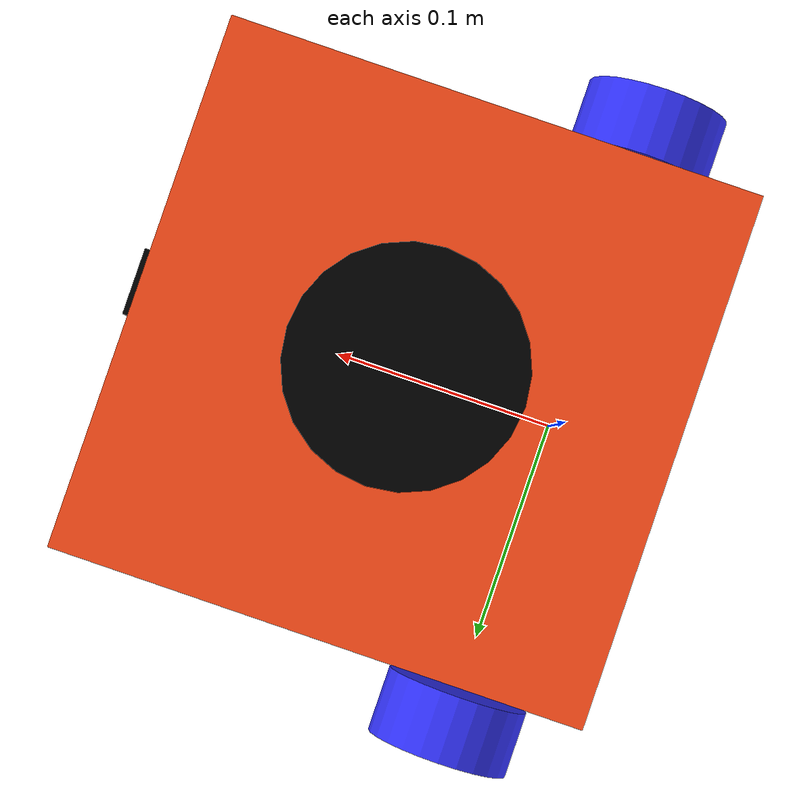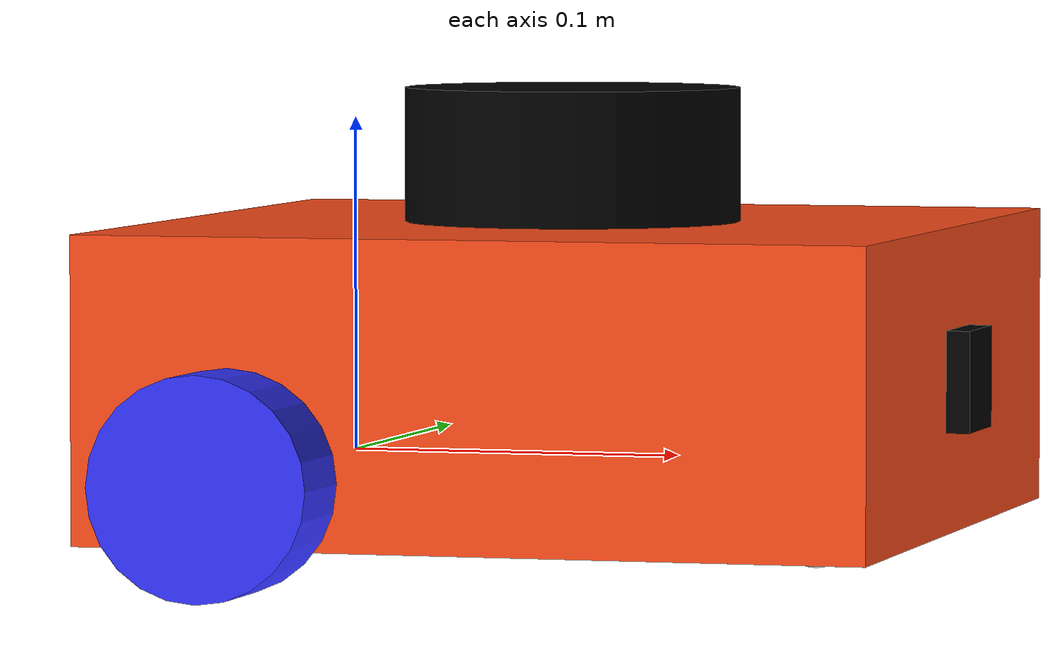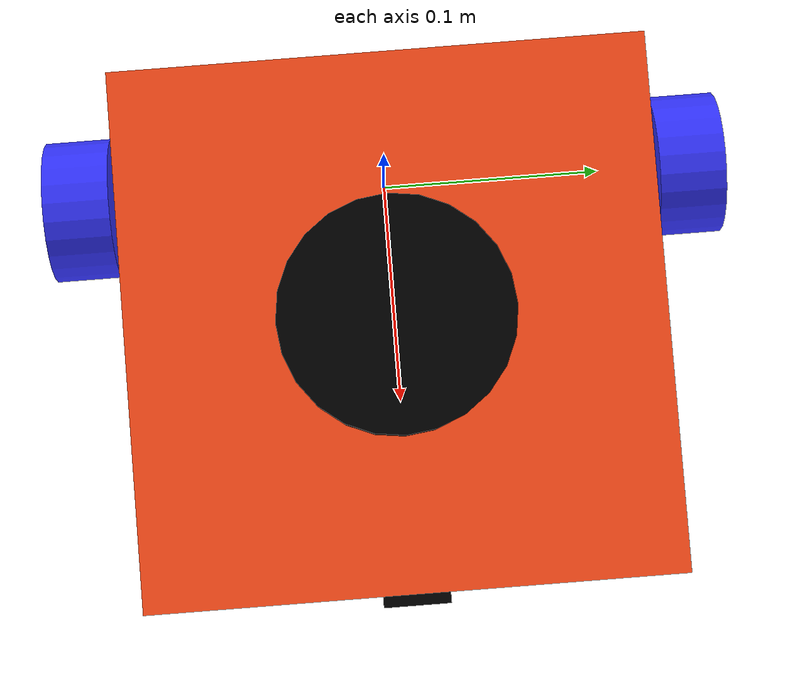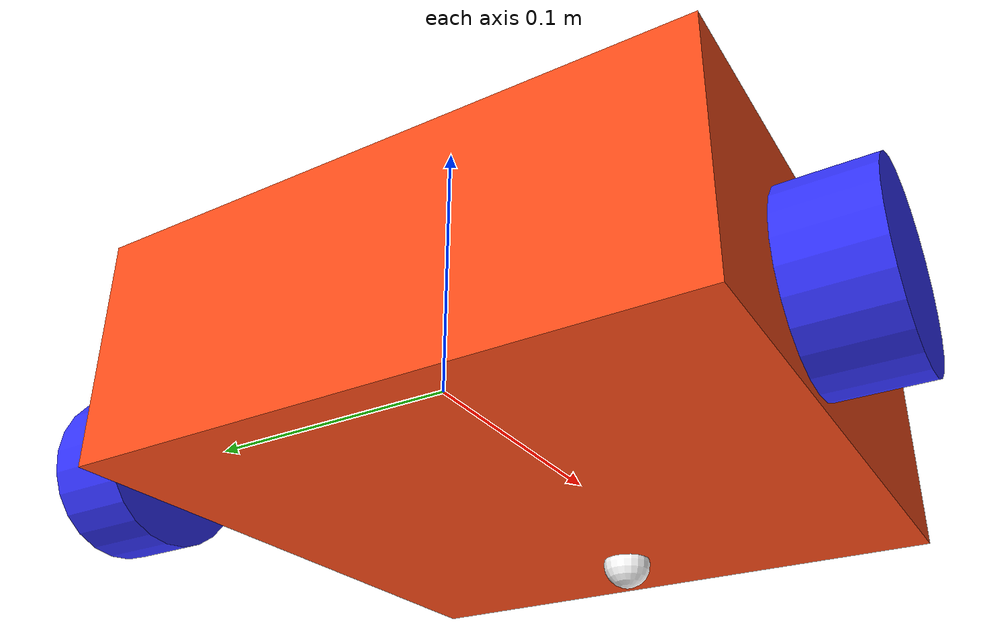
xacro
<?xml version="1.0"?>
<robot xmlns:xacro="http://www.ros.org/wiki/xacro"  name="diff_drive">

    <xacro:arg name="use_ros2_control" default="true"/>
    <xacro:arg name="sim_mode" default="false"/>

    <xacro:if value="$(arg use_ros2_control)">
        <xacro:include filename="ros2_control.xacro" />
    </xacro:if>
    <xacro:unless value="$(arg use_ros2_control)">
        <xacro:include filename="gazebo_control.xacro" />
    </xacro:unless>

    <xacro:include filename="robot_core.xacro" />
    <xacro:include filename="lidar.xacro" />
    <xacro:include filename="camera.xacro" />

</robot>

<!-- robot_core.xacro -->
<robot xmlns:xacro="http://www.ros.org/wiki/xacro">

    <xacro:include filename="inertial_macros.xacro"/>

    <xacro:property name="chassis_length" value="0.235"/>
    <xacro:property name="chassis_width" value="0.235"/>
    <xacro:property name="chassis_height" value="0.09"/>
    <xacro:property name="chassis_mass" value="1.0"/>

    <xacro:property name="wheel_radius" value="0.0325"/>
    <xacro:property name="wheel_thickness" value="0.03"/>
    <xacro:property name="wheel_mass" value="0.05"/>

    <xacro:property name="wheel_offset_x" value="0.05"/>
    <xacro:property name="wheel_offset_y" value="0.14"/>
    <xacro:property name="wheel_offset_z" value="0.0205"/>

    <xacro:property name="caster_wheel_radius" value="0.01"/>
    <xacro:property name="caster_wheel_mass" value="0.01"/>
    <xacro:property name="caster_wheel_offset_x" value="0.075"/>
    <xacro:property name="caster_wheel_offset_z" value="${wheel_offset_z - wheel_radius + caster_wheel_radius}"/>

    <material name="white">
        <color rgba="1 1 1 1" />
    </material>

    <material name="orange">
        <color rgba="1 0.3 0.1 1"/>
    </material>

    <material name="blue">
        <color rgba="0.2 0.2 1 1"/>
    </material>

    <material name="black">
        <color rgba="0 0 0 1"/>
    </material>

    <material name="red">
        <color rgba="1 0 0 1"/>
    </material>

    <!-- BASE LINK -->

    <link name="base_link">
        <origin xyz="2 0 0"/>
    </link>

    <joint name="base_footprint_joint" type="fixed">
        <parent link="base_link"/>
        <child link="base_footprint"/>
        <origin xyz="0 0 0" rpy="0 0 0"/>
    </joint>

    <link name="base_footprint">
    </link>

    <!-- CHASSIS LINK -->
     <joint name="chassis_joint" type="fixed">
        <parent link="base_link"/>
        <child link="chassis"/>
        <origin xyz="${-wheel_offset_x} 0 ${-wheel_offset_z}"/>
    </joint>

    <link name="chassis">
        <visual>
             <origin xyz="${chassis_length/2} 0 ${chassis_height/2}"/>
            <geometry>
                <box size="0.235 0.235 0.09"/>
            </geometry>
            <material name="orange"/>
        </visual>
        <collision>
             <origin xyz="${chassis_length/2} 0 ${chassis_height/2}"/>
            <geometry>
                <box size="0.235 0.235 0.09"/>
            </geometry>
        </collision>
         <xacro:inertial_box mass="0.5" x="${chassis_length}" y="${chassis_width}" z="${chassis_height}">
            <origin xyz="${chassis_length/2} 0 ${chassis_height/2}" rpy="0 0 0"/>
        </xacro:inertial_box>
    </link>

    <!-- LEFT WHEEL LINK -->
    <joint name="left_wheel_joint" type="continuous">
        <parent link="base_link"/>
        <child link="left_wheel"/>
        <origin xyz="0 ${wheel_offset_y} 0" rpy="-${pi/2} 0 0" />
        <axis xyz="0 0 1"/>
    </joint>

    <link name="left_wheel">
        <visual>
            <geometry>
                <cylinder radius="${wheel_radius}" length="${wheel_thickness}"/>
            </geometry>
            <material name="blue"/>
        </visual>
        <collision>
            <geometry>
                <sphere radius="${wheel_radius}"/>
            </geometry>
        </collision>
        <xacro:inertial_cylinder mass="${wheel_mass}" length="${wheel_thickness}" radius="${wheel_radius}">
            <origin xyz="0 0 0" rpy="0 0 0"/>
        </xacro:inertial_cylinder>
    </link>

    <!-- RIGHT WHEEL LINK -->
    <joint name="right_wheel_joint" type="continuous">
        <parent link="base_link"/>
        <child link="right_wheel"/>
        <origin xyz="0 ${-wheel_offset_y} 0" rpy="${pi/2} 0 0" />
        <axis xyz="0 0 -1"/>
    </joint>

    <link name="right_wheel">
        <visual>
            <geometry>
                <cylinder radius="${wheel_radius}" length="${wheel_thickness}"/>
            </geometry>
            <material name="blue"/>
        </visual>
        <collision>
            <geometry>
                <sphere radius="${wheel_radius}"/>
            </geometry>
        </collision>
        <xacro:inertial_cylinder mass="${wheel_mass}" length="${wheel_thickness}" radius="${wheel_radius}">
            <origin xyz="0 0 0" rpy="0 0 0"/>
        </xacro:inertial_cylinder>
    </link>

    <!-- CASTER WHEEL LINK -->
    <joint name="caster_wheel_joint" type="fixed">
        <parent link="chassis"/>
        <child link="caster_wheel"/>
        <origin xyz="${caster_wheel_offset_x + (chassis_length/2)} 0 ${caster_wheel_offset_z}"/>
    </joint>

    <link name="caster_wheel">
        <visual>
            <geometry>
                <sphere radius="${caster_wheel_radius}"/>
            </geometry>
            <material name="white"/>
        </visual>
        <collision>
            <geometry>
                <sphere radius="${caster_wheel_radius}"/>
            </geometry>
        </collision>
        <xacro:inertial_sphere mass="${caster_wheel_mass}" radius="${caster_wheel_radius}">
            <origin xyz="0 0 0" rpy="0 0 0"/>
        </xacro:inertial_sphere>
    </link>

    <gazebo reference="caster_wheel">
        <material>Gazebo/White</material>
        <mu1 value="0.001"/>
        <mu2 value="0.001"/>
    </gazebo>
</robot>

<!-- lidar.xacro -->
<robot xmlns:xacro="http://www.ros.org/wiki/xacro" >

    <joint name="lidar_joint" type="fixed">
        <parent link="chassis"/>
        <child link="lidar_link"/>
        <!-- Half of chassis forward and chassi height + half of lidar height up -->
        <origin xyz="0.1175 0 0.11" rpy="0 0 0"/>
    </joint>

    <link name="lidar_link">
        <visual>
            <geometry>
                <cylinder radius="0.05" length="0.04"/>
            </geometry>
            <material name="black"/>
        </visual>
        <collision>
            <geometry>
                <cylinder radius="0.05" length="0.04"/>
            </geometry>
        </collision>
        <xacro:inertial_cylinder mass="0.1" length="0.04" radius="0.05">
            <origin xyz="0 0 0" rpy="0 0 0"/>
        </xacro:inertial_cylinder>
    </link>

     <gazebo reference="lidar_link">
        <material>Gazebo/Black</material>
        <sensor name='gpu_lidar' type='gpu_lidar'>
          <pose>0 0 0 0 0 0</pose>
          <topic>scan</topic>
          <ignition_frame_id>lidar_link</ignition_frame_id>
          <update_rate>10</update_rate>
          <lidar>
            <scan>
              <horizontal>
                <samples>640</samples>
                <resolution>1</resolution>
                <min_angle>-3.14</min_angle>
                <max_angle>3.14</max_angle>
              </horizontal>
              <vertical>
                <samples>1</samples>
                <resolution>1</resolution>
                <min_angle>0.0</min_angle>
                <max_angle>0.0</max_angle>
              </vertical>
            </scan>
            <range>
              <min>0.08</min>
              <max>12.0</max>
              <resolution>0.01</resolution>
            </range>
          </lidar>
          <visualize>true</visualize>
        </sensor>
    </gazebo>
</robot>

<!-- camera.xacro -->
<robot xmlns:xacro="http://www.ros.org/wiki/xacro" >

    <joint name="camera_joint" type="fixed">
        <parent link="chassis"/>
        <child link="camera_link"/>
        <origin xyz="0.237 0 0.045" rpy="0 0 0"/>
    </joint>

    <link name="camera_link">
        <visual>
            <geometry>
                <box size="0.010 0.03 0.03"/>
            </geometry>
            <material name="black"/>
        </visual>
    </link>

    <joint name="camera_optical_joint" type="fixed">
        <parent link="camera_link"/>
        <child link="camera_link_optical"/>
        <origin xyz="0 0 0" rpy="${-pi/2} 0 ${-pi/2}"/>
    </joint>

    <link name="camera_link_optical"></link>

    <gazebo reference="camera_link">
        <material>Gazebo/Black</material>
        <sensor name='camera' type='camera'>
          <pose>0 0 0 0 0 0</pose>
          <ignition_frame_id>camera_link</ignition_frame_id>
          <visualize>true</visualize>
          <update_rate>10</update_rate>
          <topic>image</topic>
          <camera>
            <always_on>1</always_on>
            <horizontal_fov>1.089</horizontal_fov>
            <image>
              <format>R8G8B8</format>
              <width>640</width>
              <height>480</height>
            </image>
          </camera>
          <clip>
            <near>0.05</near>
            <far>8.0</far>
          </clip>
        </sensor>
    </gazebo>

</robot>
